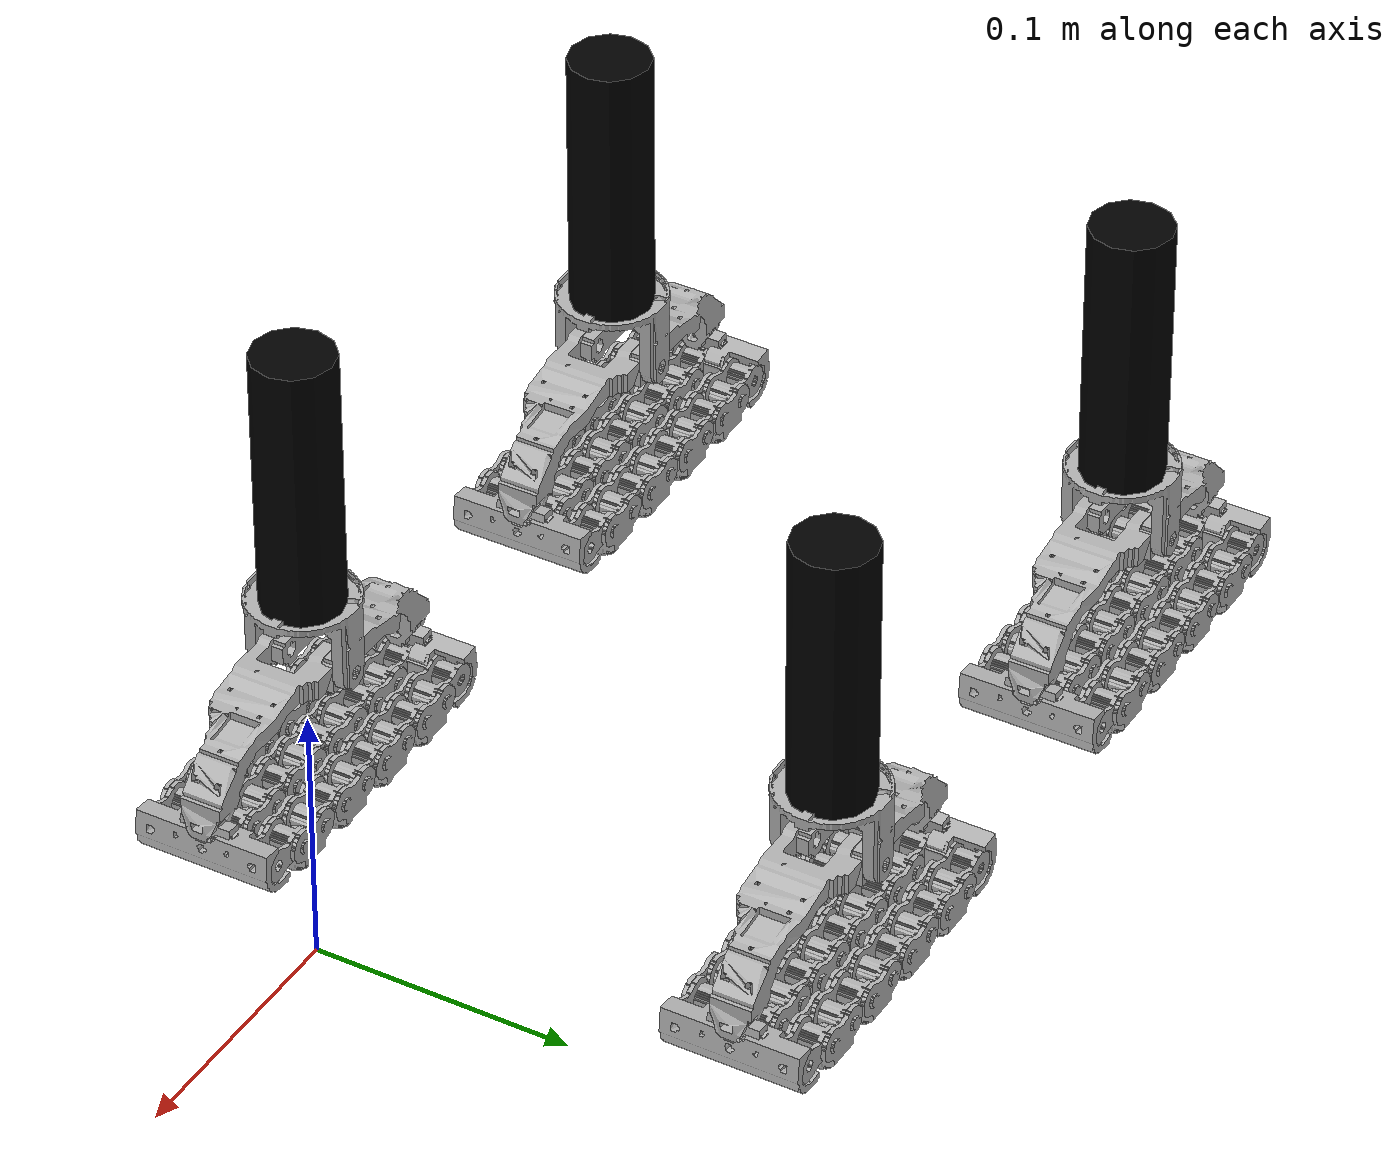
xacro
<?xml version="1.0" encoding='utf-8'?>
<robot xmlns:xacro="http://www.ros.org/wiki/xacro" name="pisa_softfoot">

<!-- ARGS -->
<xacro:property name="leg_mass" value="0.02"/>

<!-- MODELS -->
<xacro:include filename="$(find softfoot_thing_description)/model/softfoot_thing.urdf.xacro"/>

<!-- WORLD -->
<link name="world">
</link>

<!-- LEG 1 -->
<joint name="world_to_leg_1" type="revolute">
    <origin xyz="0 0.2  0.2" rpy="0 0 0"/>
    <axis xyz="0 1 0"/>
    <limit lower="-0.50" upper="0.50" effort="1" velocity="1" />
    <dynamics friction="0.0001" damping="0.0001"/>
    <parent link="world"/>
    <child link="leg_link_1"/>
</joint>

<link name="leg_link_1">
    <inertial>
        <mass value="${leg_mass}"/>
        <origin xyz="0 0 0" rpy="0 0 0"/>
        <inertia    ixx="${mm2tom2 * 1}" iyy="${mm2tom2 * 1}" izz="${mm2tom2 * 1}"
                    ixy="0" ixz="0" iyz="0"/>
        </inertial>
    <visual>
        <origin xyz="0 0 0" rpy="0 0 0"/>
        <geometry>
            <cylinder length="0.1" radius="0.015"/>
        </geometry>
        <material name="SoftFoot/Black"/>
    </visual>
    <collision>
        <origin xyz="0 0 0" rpy="0 0 0"/>
        <geometry>
            <cylinder length="0.1" radius="0.015"/>
        </geometry>
    </collision>
</link>

<gazebo reference="leg_link_1">
    <gravity>true</gravity>
    <material>Gazebo/Black</material>
</gazebo>

<!-- FOOT 1 -->
<xacro:softfoot_thing name="softfoot_1" parent="leg_link_1">
    <origin xyz="0 0 -0.05" rpy="0 0 0"/>
</xacro:softfoot_thing>

  <!-- LEG 2 -->
    <joint name="world_to_leg_2" type="revolute">
        <origin xyz="0 0.0 0.2" rpy="0 0 0"/>
        <axis xyz="0 1 0"/>
        <limit lower="-0.50" upper="0.50" effort="1" velocity="1" />
        <dynamics friction="0.0001" damping="0.0001"/>
        <parent link="world"/>
        <child link="leg_link_2"/>
    </joint>

  <link name="leg_link_2">
    <inertial>
			<mass value="${leg_mass}"/>
			<origin xyz="0 0 0" rpy="0 0 0"/>
			<inertia  ixx="${mm2tom2 * 1}" iyy="${mm2tom2 * 1}" izz="${mm2tom2 * 1}"
                ixy="0" ixz="0" iyz="0"/>
		</inertial>
    <visual>
      <origin xyz="0 0 0" rpy="0 0 0"/>
      <geometry>
        <cylinder length="0.1" radius="0.015"/>
      </geometry>
      <material name="SoftFoot/Black"/>
    </visual>
    <collision>
			<origin xyz="0 0 0" rpy="0 0 0"/>
			<geometry>
        <cylinder length="0.1" radius="0.015"/>
      </geometry>
		</collision>
  </link>

  <gazebo reference="leg_link_2">
		<gravity>true</gravity>
		<material>Gazebo/Black</material>
	</gazebo>

  <!-- FOOT 2 -->
 <xacro:softfoot_thing name="softfoot_2" parent="leg_link_2">
    <origin xyz="0 0 -0.05" rpy="0 0 0"/>
  </xacro:softfoot_thing>

    <!-- LEG 3 -->
    <joint name="world_to_leg_3" type="revolute">
        <origin xyz="-0.2 0.2 0.2" rpy="0 0 0"/>
        <axis xyz="0 1 0"/>
        <limit lower="-0.50" upper="0.50" effort="1" velocity="1" />
        <dynamics friction="0.0001" damping="0.0001"/>
        <parent link="world"/>
        <child link="leg_link_3"/>
    </joint>

    <link name="leg_link_3">
        <inertial>
            <mass value="${leg_mass}"/>
            <origin xyz="0 0 0" rpy="0 0 0"/>
            <inertia  ixx="${mm2tom2 * 1}" iyy="${mm2tom2 * 1}" izz="${mm2tom2 * 1}"
                      ixy="0" ixz="0" iyz="0"/>
        </inertial>
        <visual>
            <origin xyz="0 0 0" rpy="0 0 0"/>
            <geometry>
                <cylinder length="0.1" radius="0.015"/>
            </geometry>
            <material name="SoftFoot/Black"/>
        </visual>
        <collision>
            <origin xyz="0 0 0" rpy="0 0 0"/>
            <geometry>
                <cylinder length="0.1" radius="0.015"/>
            </geometry>
        </collision>
    </link>

    <gazebo reference="leg_link_3">
        <gravity>true</gravity>
        <material>Gazebo/Black</material>
    </gazebo>

    <!-- FOOT 3 -->
    <xacro:softfoot_thing name="softfoot_3" parent="leg_link_3">
        <origin xyz="0 0 -0.05" rpy="0 0 0"/>
    </xacro:softfoot_thing>

    <!-- LEG 4 -->
    <joint name="world_to_leg_4" type="revolute">
        <origin xyz="-0.2 0.0 0.2" rpy="0 0 0"/>
        <axis xyz="0 1 0"/>
        <limit lower="-0.50" upper="0.50" effort="1" velocity="1" />
        <dynamics friction="0.0001" damping="0.0001"/>
        <parent link="world"/>
        <child link="leg_link_4"/>
    </joint>

    <link name="leg_link_4">
        <inertial>
            <mass value="${leg_mass}"/>
            <origin xyz="0 0 0" rpy="0 0 0"/>
            <inertia  ixx="${mm2tom2 * 1}" iyy="${mm2tom2 * 1}" izz="${mm2tom2 * 1}"
                      ixy="0" ixz="0" iyz="0"/>
        </inertial>
        <visual>
            <origin xyz="0 0 0" rpy="0 0 0"/>
            <geometry>
                <cylinder length="0.1" radius="0.015"/>
            </geometry>
            <material name="SoftFoot/Black"/>
        </visual>
        <collision>
            <origin xyz="0 0 0" rpy="0 0 0"/>
            <geometry>
                <cylinder length="0.1" radius="0.015"/>
            </geometry>
        </collision>
    </link>

    <gazebo reference="leg_link_4">
        <gravity>true</gravity>
        <material>Gazebo/Black</material>
    </gazebo>

    <!-- FOOT 3 -->
    <xacro:softfoot_thing name="softfoot_4" parent="leg_link_4">
        <origin xyz="0 0 -0.05" rpy="0 0 0"/>
    </xacro:softfoot_thing>

</robot>

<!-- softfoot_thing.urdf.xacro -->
<robot name="softfoot_thing" xmlns:xacro="http://www.ros.org/wiki/xacro">

    <!-- Properties -->
    <xacro:property name="const_pi" value="3.1415926535897931"/>
    <xacro:property name="ankle_mass" value="0.0181"/>
    <xacro:property name="arch_mass" value="0.0256"/>
    <xacro:property name="roll_mass" value="0.0177"/>
    <xacro:property name="velocity" value="100" />
    <xacro:property name="effort" value="100" />

    <xacro:property name="max_stiffness" value="10"/>
    <xacro:property name="min_stiffness" value="0"/>
    <xacro:property name="rate_stiffness" value="20"/>

    <!-- Gazebo and Transmission -->
    <xacro:include filename="$(find softfoot_thing_description)/model/softfoot_thing.gazebo.xacro"/>
    <xacro:include filename="$(find softfoot_thing_description)/model/softfoot_thing.transmission.xacro"/>

    <!-- Utilities -->
    <xacro:include filename="$(find softfoot_thing_description)/model/chain_thing.urdf.xacro"/>
    <xacro:include filename="$(find softfoot_thing_description)/model/softfoot_thing_inertia.xacro"/>
    <xacro:include filename="$(find softfoot_thing_description)/model/softfoot_thing_materials.xacro"/>

    <!-- URDF -->
    <xacro:macro name="softfoot_thing" params="parent name *origin">

        <!-- 0) Ankle base - fixed to parent. -->
        <joint name="${parent}_${name}_ankle_base_joint" type="fixed">
            <xacro:insert_block name="origin"/>
            <origin xyz="0 0 0" rpy="0 0 0"/>
            <parent link="${parent}"/>
            <child link="${name}_ankle_base_link"/>
        </joint>

        <link name="${name}_ankle_base_link">
            <inertial>
                <xacro:insert_block name="really_negligible_inertia"/>
            </inertial>
        </link>

        <!-- 1) Ankle of the foot - fixed to parent. -->
        <joint name="${name}_ankle_joint" type="fixed">
            <origin xyz="0 0 -0.022" rpy="0 0 0"/>
            <parent link="${name}_ankle_base_link"/>
            <child link="${name}_ankle_link"/>
        </joint>

        <link name="${name}_ankle_link">
            <inertial>
                <mass value="${ankle_mass}"/>
                <origin xyz="0 0 0.0154" rpy="0 0 0"/>
                <xacro:ankle_inertia/>
            </inertial>
            <visual>
                <origin xyz="0 0 0" rpy="0 0 0"/>
                <geometry>
                    <mesh filename="package://softfoot_thing_description/meshes/visual/ankle.stl"
                          scale=" .001 .001 .001"/>
                </geometry>
                <material name="SoftFoot/Grey"/>
            </visual>
            <collision>
                <origin xyz="0 0 0" rpy="0 0 0"/>
                <geometry>
                    <mesh filename="package://softfoot_thing_description/meshes/collision/ankle.stl"
                          scale=" .001 .001 .001"/>
                </geometry>
            </collision>
        </link>

        <!-- 2) Front arch - joint along y-axis to pitch -->
        <joint name="${name}_front_arch_joint" type="revolute">
            <origin xyz="0 0 0" rpy="0 0 0"/>
            <axis xyz="0 1 0"/>
            <limit lower="${-30 * const_pi / 180}" upper="${30* const_pi / 180}" effort="${effort}" velocity="${velocity}"/>
            <dynamics friction="0.0001" damping="0.0001"/>
            <parent link="${name}_ankle_link"/>
            <child link="${name}_front_arch_link"/>
        </joint>

        <link name="${name}_front_arch_link">
            <inertial>
                <mass value="${arch_mass}"/>
                <origin xyz="0.0356 -0.0011 -0.0078" rpy="0 0 0"/>
                <xacro:front_arch_inertia/>
            </inertial>
            <visual>
                <origin xyz="0 0 0" rpy="0 0 0"/>
                <geometry>
                    <mesh filename="package://softfoot_thing_description/meshes/visual/front_arch_front.stl"
                          scale=" .001 .001 .001"/>
                </geometry>
                <material name="SoftFoot/Grey"/>
            </visual>
            <collision>
                <origin xyz="0 0 0" rpy="0 0 0"/>
                <geometry>
                    <mesh filename="package://softfoot_thing_description/meshes/collision/front_arch_front.stl"
                          scale=" .001 .001 .001"/>
                </geometry>
            </collision>
        </link>

        <!-- 2) Front arch - stiffness -->

        <!-- 3) Back arch - joint along y-axis to pitch -->
        <joint name="${name}_back_arch_joint" type="revolute">
            <origin xyz="0 0 0" rpy="0 0 0"/>
            <axis xyz="0 -1 0"/>
            <limit lower="${-30 * const_pi / 180}" upper="${30 * const_pi / 180}" effort="${effort}" velocity="${velocity}"/>
            <dynamics friction="0.0001" damping="0.0001"/>
            <parent link="${name}_ankle_link"/>
            <child link="${name}_back_arch_link"/>
        </joint>

        <link name="${name}_back_arch_link">
            <inertial>
                <mass value="${arch_mass}"/>
                <origin xyz="-0.0356 0.0011 -0.0078" rpy="0 0 0"/>
                <xacro:back_arch_inertia/>
            </inertial>
            <visual>
                <origin xyz="0 0 0" rpy="0 0 0"/>
                <geometry>
                    <mesh filename="package://softfoot_thing_description/meshes/visual/front_arch_back.stl"
                          scale=" .001 .001 .001"/>
                </geometry>
                <material name="SoftFoot/Grey"/>
            </visual>
            <collision>
                <origin xyz="0 0 0" rpy="0 0 0"/>
                <geometry>
                    <mesh filename="package://softfoot_thing_description/meshes/collision/front_arch_back.stl"
                          scale=" .001 .001 .001"/>
                </geometry>
            </collision>
        </link>

        <!-- 3) Back arch - stiffness -->

        <!-- x) Roll driving joint - we suppose the roll joints move specularly -->
        <joint name="${name}_roll_joint" type="revolute">
            <origin xyz="0.058 0 -0.028" rpy="0 -0.1047 0"/>
            <axis xyz="1 0 0"/>
            <limit lower="${-45 * const_pi / 180}" upper="${45 * const_pi / 180}" effort="${effort}" velocity="${velocity}"/>
            <dynamics friction="0.01" damping="0.01"/>
            <parent link="${name}_front_arch_link"/>
            <child link="${name}_roll_link"/>
        </joint>

        <link name="${name}_roll_link">
            <inertial>
                <xacro:insert_block name="really_negligible_inertia"/>
            </inertial>
        </link>

        <!-- 4) Front roll - joint along x-axis to roll -->
        <joint name="${name}_front_roll_joint" type="revolute">
            <origin xyz="0.058 0 -0.028" rpy="0 -0.1047 0"/>
            <axis xyz="1 0 0"/>
            <limit lower="${-45 * const_pi / 180}" upper="${45 * const_pi / 180}" effort="${effort}" velocity="${velocity}"/>
            <dynamics friction="0.0001" damping="0.0001"/>
            <mimic joint="${name}_roll_joint" multiplier="1"/>
            <parent link="${name}_front_arch_link"/>
            <child link="${name}_front_roll_link"/>
        </joint>

        <link name="${name}_front_roll_link">
            <inertial>
                <mass value="${roll_mass}"/>
                <origin xyz="0.0010 0 -0.0112" rpy="0 0 0"/>
                <xacro:roll_link_inertia/>
            </inertial>
            <visual>
                <origin xyz="0 0 0" rpy="0 0 0"/>
                <geometry>
                    <mesh filename="package://softfoot_thing_description/meshes/visual/roll_link_v04.stl"
                          scale=" .001 .001 .001"/>
                </geometry>
                <material name="SoftFoot/Grey"/>
            </visual>
            <collision>
                <origin xyz="0 0 0" rpy="0 0 0"/>
                <geometry>
                    <mesh filename="package://softfoot_thing_description/meshes/collision/roll_link_v04.stl"
                          scale=" .001 .001 .001"/>
                </geometry>
            </collision>
        </link>

        <!-- 4) Front roll - stiffness -->

        <!-- 4) Back roll - joint along x-axis to roll -->
        <joint name="${name}_back_roll_joint" type="revolute">
            <origin xyz="-0.058 0 -0.028" rpy="0 -0.1047 ${const_pi}"/>
            <axis xyz="1 0 0"/>
            <limit lower="${-45 * const_pi / 180}" upper="${45 * const_pi / 180}" effort="${effort}" velocity="${velocity}"/>
            <dynamics friction="0.0001" damping="0.0001"/>
            <mimic joint="${name}_roll_joint" multiplier="-1"/>
            <parent link="${name}_back_arch_link"/>
            <child link="${name}_back_roll_link"/>
        </joint>

        <link name="${name}_back_roll_link">
            <inertial>
                <mass value="${roll_mass}"/>
                <origin xyz="0.0010 0 -0.0112" rpy="0 0 0"/>
                <xacro:roll_link_inertia/>
            </inertial>
            <visual>
                <origin xyz="0 0 0" rpy="0 0 0"/>
                <geometry>
                    <mesh filename="package://softfoot_thing_description/meshes/visual/roll_link_v04.stl"
                          scale=" .001 .001 .001"/>
                </geometry>
                <material name="SoftFoot/Grey"/>
            </visual>
            <collision>
                <origin xyz="0 0 0" rpy="0 0 0"/>
                <geometry>
                    <mesh filename="package://softfoot_thing_description/meshes/collision/roll_link_v04.stl"
                          scale=" .001 .001 .001"/>
                </geometry>
            </collision>
        </link>

        <!-- 4) Back roll - stiffness -->

        <!-- 5) Middle chain insertion point -->
        <joint name="${name}_middle_chain_insertion_joint" type="fixed">
            <origin xyz="-0.00209969 0 -0.0118454" rpy="${-(const_pi / 2) - 0.105} 0 ${-const_pi / 2}"/>
            <parent link="${name}_back_roll_link"/>
            <child link="${name}_middle_chain_insertion_link"/>
        </joint>

        <link name="${name}_middle_chain_insertion_link">
            <inertial>
                <xacro:insert_block name="really_negligible_inertia"/>
            </inertial>
        </link>

        <!-- 6) Middle chain - starting from front -->
        <xacro:chain_thing name="middle_chain" foot="${name}" parent="${name}_front_roll_link">
            <origin xyz="-0.00209969 0 -0.0118454" rpy="${-(const_pi / 2) + 0.1046328} 0 ${const_pi / 2}"/>
        </xacro:chain_thing>

        <!-- 7) Right chain - starting from front -->
        <xacro:chain_thing name="right_chain" foot="${name}" parent="${name}_front_roll_link">
            <origin xyz="-0.00209969 -0.0191500 -0.0118454" rpy="${-(const_pi / 2) + 0.1046328} 0 ${const_pi / 2}"/>
        </xacro:chain_thing>

        <!-- 8) Left chain - starting from front -->
        <xacro:chain_thing name="left_chain" foot="${name}" parent="${name}_front_roll_link">
            <origin xyz="-0.00209969 0.0191500 -0.0118454" rpy="${-(const_pi / 2) + 0.1046328} 0 ${const_pi / 2}"/>
        </xacro:chain_thing>

        <!-- Gazebo elements -->
        <xacro:softfoot_thing_gazebo name="${name}" left_chain_name="left_chain" middle_chain_name="middle_chain"
                                     right_chain_name="right_chain"/>
        <xacro:softfoot_thing_transmission name="${name}"/>

    </xacro:macro>

</robot>

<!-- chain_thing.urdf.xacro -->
<robot xmlns:xacro="http://www.ros.org/wiki/xacro">

    <!-- Properties -->
    <xacro:property name="const_pi" value="3.1415926535897931"/>
    <xacro:property name="inner_chain_mass" value="0.0082"/>
    <xacro:property name="outer_chain_mass" value="0.0156"/>
    <xacro:property name="velocity" value="100"/>
    <xacro:property name="effort" value="100"/>

    <!-- Utilities -->
    <xacro:include filename="$(find softfoot_thing_description)/model/chain_thing_inertia.xacro"/>
    <xacro:include filename="$(find softfoot_thing_description)/model/chain_thing_materials.xacro"/>

    <!-- URDF -->
    <xacro:macro name="chain_thing" params="parent name foot *origin">

        <!-- TODO: Rotation axes now around x, it might be better to change meshes to revolute around y -->

        <!-- 0) Chain 1 - joint along y-axis to pitch -->
        <joint name="${foot}_${name}_1_joint" type="revolute">
            <xacro:insert_block name="origin"/>
            <origin xyz="0 0 0" rpy="0 0 0"/>
            <axis xyz="1 0 0"/>
            <limit lower="${-45 * const_pi / 180}" upper="${45 * const_pi / 180}" effort="${effort}"
                   velocity="${velocity}"/>
            <dynamics friction="0.0001" damping="0.0001"/>
            <parent link="${parent}"/>
            <child link="${foot}_${name}_1_link"/>
        </joint>

        <link name="${foot}_${name}_1_link">
            <inertial>
                <mass value="${inner_chain_mass}"/>
                <origin xyz="0 0 0" rpy="0 0 0"/>
                <xacro:inner_chain_inertia/>
            </inertial>
            <visual>
                <origin xyz="0 0 0" rpy="0 0 0"/>
                <geometry>
                    <mesh filename="package://softfoot_thing_description/meshes/visual/inner_chain.stl"
                          scale=" .001 .001 .001"/>
                </geometry>
                <material name="SoftChain/Grey"/>
            </visual>
            <collision>
                <origin xyz="0 0 0" rpy="0 0 0"/>
                <geometry>
                    <mesh filename="package://softfoot_thing_description/meshes/collision/inner_chain.stl"
                          scale=" .001 .001 .001"/>
                </geometry>
            </collision>
        </link>

        <!-- 1) Chain 2 - joint along y-axis to pitch -->
        <joint name="${foot}_${name}_2_joint" type="revolute">
            <origin xyz="0 0 0.0127" rpy="0 0 0"/>
            <axis xyz="1 0 0"/>
            <limit lower="${-45 * const_pi / 180}" upper="${45 * const_pi / 180}" effort="${effort}"
                   velocity="${velocity}"/>
            <dynamics friction="0.0001" damping="0.0001"/>
            <parent link="${foot}_${name}_1_link"/>
            <child link="${foot}_${name}_2_link"/>
        </joint>

        <link name="${foot}_${name}_2_link">
            <inertial>
                <mass value="${outer_chain_mass}"/>
                <origin xyz="0 0 0" rpy="0 0 0"/>
                <xacro:outer_chain_inertia/>
            </inertial>
            <visual>
                <origin xyz="0 0 0" rpy="0 0 0"/>
                <geometry>
                    <mesh filename="package://softfoot_thing_description/meshes/visual/outer_chain.stl"
                          scale=" .001 .001 .001"/>
                </geometry>
                <material name="SoftChain/Grey"/>
            </visual>
            <collision>
                <origin xyz="0 0 0" rpy="0 0 0"/>
                <geometry>
                    <mesh filename="package://softfoot_thing_description/meshes/collision/outer_chain.stl"
                          scale=" .001 .001 .001"/>
                </geometry>
            </collision>
        </link>

        <!-- 2) Chain 3 - joint along y-axis to pitch -->
        <joint name="${foot}_${name}_3_joint" type="revolute">
            <origin xyz="0 0 0.0127" rpy="0 0 0"/>
            <axis xyz="1 0 0"/>
            <limit lower="${-45 * const_pi / 180}" upper="${45 * const_pi / 180}" effort="${effort}"
                   velocity="${velocity}"/>
            <dynamics friction="0.0001" damping="0.0001"/>
            <parent link="${foot}_${name}_2_link"/>
            <child link="${foot}_${name}_3_link"/>
        </joint>

        <link name="${foot}_${name}_3_link">
            <inertial>
                <mass value="${inner_chain_mass}"/>
                <origin xyz="0 0 0" rpy="0 0 0"/>
                <xacro:inner_chain_inertia/>
            </inertial>
            <visual>
                <origin xyz="0 0 0" rpy="0 0 0"/>
                <geometry>
                    <mesh filename="package://softfoot_thing_description/meshes/visual/inner_chain.stl"
                          scale=" .001 .001 .001"/>
                </geometry>
                <material name="SoftChain/Grey"/>
            </visual>
            <collision>
                <origin xyz="0 0 0" rpy="0 0 0"/>
                <geometry>
                    <mesh filename="package://softfoot_thing_description/meshes/collision/inner_chain.stl"
                          scale=" .001 .001 .001"/>
                </geometry>
            </collision>
        </link>

        <!-- 3) Chain 4 - joint along y-axis to pitch -->
        <joint name="${foot}_${name}_4_joint" type="revolute">
            <origin xyz="0 0 0.0127" rpy="0 0 0"/>
            <axis xyz="1 0 0"/>
            <limit lower="${-45 * const_pi / 180}" upper="${45 * const_pi / 180}" effort="${effort}"
                   velocity="${velocity}"/>
            <dynamics friction="0.0001" damping="0.0001"/>
            <parent link="${foot}_${name}_3_link"/>
            <child link="${foot}_${name}_4_link"/>
        </joint>

        <link name="${foot}_${name}_4_link">
            <inertial>
                <mass value="${outer_chain_mass}"/>
                <origin xyz="0 0 0" rpy="0 0 0"/>
                <xacro:outer_chain_inertia/>
            </inertial>
            <visual>
                <origin xyz="0 0 0" rpy="0 0 0"/>
                <geometry>
                    <mesh filename="package://softfoot_thing_description/meshes/visual/outer_chain.stl"
                          scale=" .001 .001 .001"/>
                </geometry>
                <material name="SoftChain/Grey"/>
            </visual>
            <collision>
                <origin xyz="0 0 0" rpy="0 0 0"/>
                <geometry>
                    <mesh filename="package://softfoot_thing_description/meshes/collision/outer_chain.stl"
                          scale=" .001 .001 .001"/>
                </geometry>
            </collision>
        </link>

        <!-- 4) Chain 5 - joint along y-axis to pitch -->
        <joint name="${foot}_${name}_5_joint" type="revolute">
            <origin xyz="0 0 0.0127" rpy="0 0 0"/>
            <axis xyz="1 0 0"/>
            <limit lower="${-45 * const_pi / 180}" upper="${45 * const_pi / 180}" effort="${effort}"
                   velocity="${velocity}"/>
            <dynamics friction="0.0001" damping="0.0001"/>
            <parent link="${foot}_${name}_4_link"/>
            <child link="${foot}_${name}_5_link"/>
        </joint>

        <link name="${foot}_${name}_5_link">
            <inertial>
                <mass value="${inner_chain_mass}"/>
                <origin xyz="0 0 0" rpy="0 0 0"/>
                <xacro:inner_chain_inertia/>
            </inertial>
            <visual>
                <origin xyz="0 0 0" rpy="0 0 0"/>
                <geometry>
                    <mesh filename="package://softfoot_thing_description/meshes/visual/inner_chain.stl"
                          scale=" .001 .001 .001"/>
                </geometry>
                <material name="SoftChain/Grey"/>
            </visual>
            <collision>
                <origin xyz="0 0 0" rpy="0 0 0"/>
                <geometry>
                    <mesh filename="package://softfoot_thing_description/meshes/collision/inner_chain.stl"
                          scale=" .001 .001 .001"/>
                </geometry>
            </collision>
        </link>

        <!-- 5) Chain 6 - joint along y-axis to pitch -->
        <joint name="${foot}_${name}_6_joint" type="revolute">
            <origin xyz="0 0 0.0127" rpy="0 0 0"/>
            <axis xyz="1 0 0"/>
            <limit lower="${-45 * const_pi / 180}" upper="${45 * const_pi / 180}" effort="${effort}"
                   velocity="${velocity}"/>
            <dynamics friction="0.0001" damping="0.0001"/>
            <parent link="${foot}_${name}_5_link"/>
            <child link="${foot}_${name}_6_link"/>
        </joint>

        <link name="${foot}_${name}_6_link">
            <inertial>
                <mass value="${outer_chain_mass}"/>
                <origin xyz="0 0 0" rpy="0 0 0"/>
                <xacro:outer_chain_inertia/>
            </inertial>
            <visual>
                <origin xyz="0 0 0" rpy="0 0 0"/>
                <geometry>
                    <mesh filename="package://softfoot_thing_description/meshes/visual/outer_chain.stl"
                          scale=" .001 .001 .001"/>
                </geometry>
                <material name="SoftChain/Grey"/>
            </visual>
            <collision>
                <origin xyz="0 0 0" rpy="0 0 0"/>
                <geometry>
                    <mesh filename="package://softfoot_thing_description/meshes/collision/outer_chain.stl"
                          scale=" .001 .001 .001"/>
                </geometry>
            </collision>
        </link>

        <!-- 6) Chain 7 - joint along y-axis to pitch -->
        <joint name="${foot}_${name}_7_joint" type="revolute">
            <origin xyz="0 0 0.0127" rpy="0 0 0"/>
            <axis xyz="1 0 0"/>
            <limit lower="${-45 * const_pi / 180}" upper="${45 * const_pi / 180}" effort="${effort}"
                   velocity="${velocity}"/>
            <dynamics friction="0.0001" damping="0.0001"/>
            <parent link="${foot}_${name}_6_link"/>
            <child link="${foot}_${name}_7_link"/>
        </joint>

        <link name="${foot}_${name}_7_link">
            <inertial>
                <mass value="${inner_chain_mass}"/>
                <origin xyz="0 0 0" rpy="0 0 0"/>
                <xacro:inner_chain_inertia/>
            </inertial>
            <visual>
                <origin xyz="0 0 0" rpy="0 0 0"/>
                <geometry>
                    <mesh filename="package://softfoot_thing_description/meshes/visual/inner_chain.stl"
                          scale=" .001 .001 .001"/>
                </geometry>
                <material name="SoftChain/Grey"/>
            </visual>
            <collision>
                <origin xyz="0 0 0" rpy="0 0 0"/>
                <geometry>
                    <mesh filename="package://softfoot_thing_description/meshes/collision/inner_chain.stl"
                          scale=" .001 .001 .001"/>
                </geometry>
            </collision>
        </link>

        <!-- 7) Chain 8 - joint along y-axis to pitch -->
        <joint name="${foot}_${name}_8_joint" type="revolute">
            <origin xyz="0 0 0.0127" rpy="0 0 0"/>
            <axis xyz="1 0 0"/>
            <limit lower="${-45 * const_pi / 180}" upper="${45 * const_pi / 180}" effort="${effort}"
                   velocity="${velocity}"/>
            <dynamics friction="0.0001" damping="0.0001"/>
            <parent link="${foot}_${name}_7_link"/>
            <child link="${foot}_${name}_8_link"/>
        </joint>

        <link name="${foot}_${name}_8_link">
            <inertial>
                <mass value="${outer_chain_mass}"/>
                <origin xyz="0 0 0" rpy="0 0 0"/>
                <xacro:outer_chain_inertia/>
            </inertial>
            <visual>
                <origin xyz="0 0 0" rpy="0 0 0"/>
                <geometry>
                    <mesh filename="package://softfoot_thing_description/meshes/visual/outer_chain.stl"
                          scale=" .001 .001 .001"/>
                </geometry>
                <material name="SoftChain/Grey"/>
            </visual>
            <collision>
                <origin xyz="0 0 0" rpy="0 0 0"/>
                <geometry>
                    <mesh filename="package://softfoot_thing_description/meshes/collision/outer_chain.stl"
                          scale=" .001 .001 .001"/>
                </geometry>
            </collision>
        </link>

        <!-- 8) Chain 9 - joint along y-axis to pitch -->
        <joint name="${foot}_${name}_9_joint" type="revolute">
            <origin xyz="0 0 0.0127" rpy="0 0 0"/>
            <axis xyz="1 0 0"/>
            <limit lower="${-45 * const_pi / 180}" upper="${45 * const_pi / 180}" effort="${effort}"
                   velocity="${velocity}"/>
            <dynamics friction="0.0001" damping="0.0001"/>
            <parent link="${foot}_${name}_8_link"/>
            <child link="${foot}_${name}_9_link"/>
        </joint>

        <link name="${foot}_${name}_9_link">
            <inertial>
                <mass value="${inner_chain_mass}"/>
                <origin xyz="0 0 0" rpy="0 0 0"/>
                <xacro:inner_chain_inertia/>
            </inertial>
            <visual>
                <origin xyz="0 0 0" rpy="0 0 0"/>
                <geometry>
                    <mesh filename="package://softfoot_thing_description/meshes/visual/inner_chain.stl"
                          scale=" .001 .001 .001"/>
                </geometry>
                <material name="SoftChain/Grey"/>
            </visual>
            <collision>
                <origin xyz="0 0 0" rpy="0 0 0"/>
                <geometry>
                    <mesh filename="package://softfoot_thing_description/meshes/collision/inner_chain.stl"
                          scale=" .001 .001 .001"/>
                </geometry>
            </collision>
        </link>

        <!-- 9) Chain Tip - fixed joint -->
        <joint name="${foot}_${name}_tip_joint" type="fixed">
            <origin xyz="0 0 0.0127" rpy="0 0 0"/>
            <parent link="${foot}_${name}_9_link"/>
            <child link="${foot}_${name}_tip_link"/>
        </joint>

        <link name="${foot}_${name}_tip_link">
            <inertial>
                <xacro:insert_block name="really_negligible_inertia"/>
            </inertial>
        </link>

    </xacro:macro>

</robot>

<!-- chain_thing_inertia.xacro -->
<robot xmlns:xacro="http://www.ros.org/wiki/xacro">

  <xacro:property name="negligible_mass" value="0.1"/>
  <xacro:property name="mm2tom2" value="0.000001"/>

  <!-- INERTIA MATRICES FOR CHAIN LINKS (wrt frames in urdf inertial) -->

  <!-- Inner Chain link -->
  <xacro:macro name="inner_chain_inertia">
    <inertia ixx="${mm2tom2 * 0.2123}" iyy="${mm2tom2 * 0.4544}" izz="${mm2tom2 * 0.5212}"
             ixy="${mm2tom2 * 0.0000}" ixz="${mm2tom2 * 0.0000}" iyz="${mm2tom2 * 0.0000}"/>
  </xacro:macro>

  <!-- Outer Chain link -->
  <xacro:macro name="outer_chain_inertia">
    <inertia ixx="${mm2tom2 * 1.0952}" iyy="${mm2tom2 * 1.7869}" izz="${mm2tom2 * 1.4768}"
             ixy="${mm2tom2 * 0.0000}" ixz="${mm2tom2 * 0.0000}" iyz="${mm2tom2 * 0.0000}"/>
  </xacro:macro>

</robot>

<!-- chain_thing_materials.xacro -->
<robot xmlns:xacro="http://www.ros.org/wiki/xacro">

  <material name="SoftChain/DarkGrey">
    <color rgba="0.3 0.3 0.3 1.0"/>
  </material>

  <material name="SoftChain/LightGrey">
    <color rgba="0.8 0.8 0.8 1.0"/>
  </material>

  <material name="SoftChain/Black">
    <color rgba="0 0 0 1.0"/>
  </material>

  <material name="SoftChain/Silver">
    <color rgba="1.0 1.0 1.0 1.0"/>
  </material>

  <material name="SoftChain/Grey">
    <color rgba="0.7 0.7 0.7 1.0"/>
  </material>

</robot>

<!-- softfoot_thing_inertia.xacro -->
<robot xmlns:xacro="http://www.ros.org/wiki/xacro">

    <xacro:property name="negligible_mass" value="0.1"/>
    <xacro:property name="really_negligible_mass" value="0.00001"/>
    <xacro:property name="mm2tom2" value="0.000001"/>

    <!-- INERTIA MATRICES FOR LINKS (wrt frames in urdf inertial) -->

    <!-- Ankle -->
    <xacro:macro name="ankle_inertia">
        <inertia ixx="${mm2tom2 * 4.4972}" iyy="${mm2tom2 * 1.8785}" izz="${mm2tom2 * 1.0468}"
                 ixy="${mm2tom2 * -0.0012}" ixz="${mm2tom2 * -0.0027}" iyz="${mm2tom2 * 0.0005}"/>
    </xacro:macro>

    <!-- Front arch -->
    <xacro:macro name="front_arch_inertia">
        <inertia ixx="${mm2tom2 * 3.1301}" iyy="${mm2tom2 * 12.3897}" izz="${mm2tom2 * 11.8654}"
                 ixy="${mm2tom2 * -0.3627}" ixz="${mm2tom2 * 3.6816}" iyz="${mm2tom2 * 0.1283}"/>
    </xacro:macro>

    <!-- Back arch -->
    <xacro:macro name="back_arch_inertia">
        <inertia ixx="${mm2tom2 * 3.1301}" iyy="${mm2tom2 * 12.3897}" izz="${mm2tom2 * 11.8654}"
                 ixy="${mm2tom2 * -0.3627}" ixz="${mm2tom2 * -3.6816}" iyz="${mm2tom2 * -0.1283}"/>
    </xacro:macro>

    <!-- Roll link -->
    <xacro:macro name="roll_link_inertia">
        <inertia ixx="${mm2tom2 * 3.6156}" iyy="${mm2tom2 * 0.9073}" izz="${mm2tom2 * 3.2659}"
                 ixy="${mm2tom2 * 0.0000}" ixz="${mm2tom2 * -0.1588}" iyz="${mm2tom2 * 0.0000}"/>
    </xacro:macro>

    <!-- Simple cuboid -->
    <xacro:macro name="cuboid_inertia_def" params="width height length mass">
        <inertia ixx="${mass * (height * height + length * length) / 12}"
                 iyy="${mass * (width * width + length * length) / 12}"
                 izz="${mass * (width * width + height * height) / 12}"
                 ixy="0" iyz="0" ixz="0"/>
    </xacro:macro>

    <!-- Simple cylinder -->
    <xacro:macro name="cylinder_inertia_def" params="radius length mass">
        <inertia ixx="${mass * (3 * radius * radius + length * length) / 12}"
                 iyy="${mass * radius* radius / 2}"
                 izz="${mass * (3 * radius * radius + length * length) / 12}"
                 ixy="0" iyz="0" ixz="0"/>
    </xacro:macro>

    <!-- Negligible inertia for simulation -->
    <xacro:property name="negligible_inertia">
        <origin xyz="0 0 0"/>
        <mass value="${negligible_mass}"/>
        <inertia ixx="${mm2tom2 * 0.0001}" iyy="${mm2tom2 * 0.0001}" izz="${mm2tom2 * 0.0001}"
                 ixy="0.0" ixz="0.0" iyz="0.0"/>
    </xacro:property>

    <xacro:property name="really_negligible_inertia">
        <origin xyz="0 0 0"/>
        <mass value="${really_negligible_mass}"/>
        <inertia ixx="${mm2tom2 * 0.00001}" iyy="${mm2tom2 * 0.00001}" izz="${mm2tom2 * 0.00001}"
                 ixy="0.0" ixz="0.0" iyz="0.0"/>
    </xacro:property>

</robot>

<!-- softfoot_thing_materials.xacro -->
<robot xmlns:xacro="http://www.ros.org/wiki/xacro">

  <material name="SoftFoot/DarkGrey">
    <color rgba="0.3 0.3 0.3 1.0"/>
  </material>

  <material name="SoftFoot/LightGrey">
    <color rgba="0.8 0.8 0.8 1.0"/>
  </material>

  <material name="SoftFoot/Black">
    <color rgba="0 0 0 1.0"/>
  </material>

  <material name="SoftFoot/Silver">
    <color rgba="1.0 1.0 1.0 1.0"/>
  </material>

  <material name="SoftFoot/Grey">
    <color rgba="0.7 0.7 0.7 1.0"/>
  </material>

</robot>
